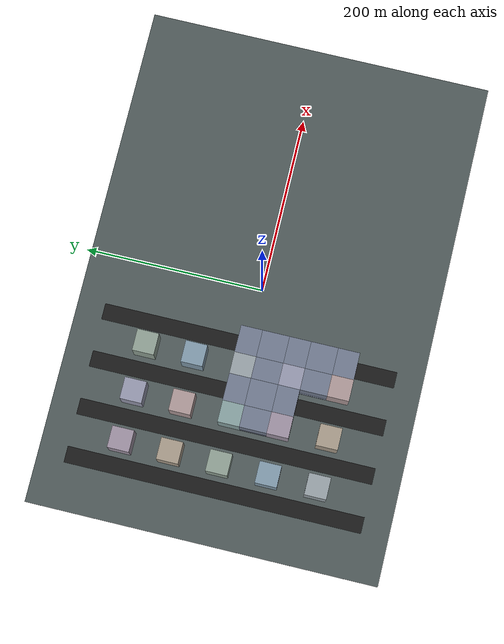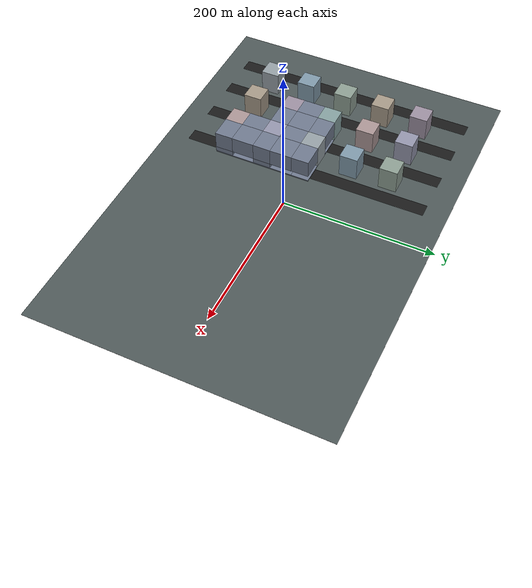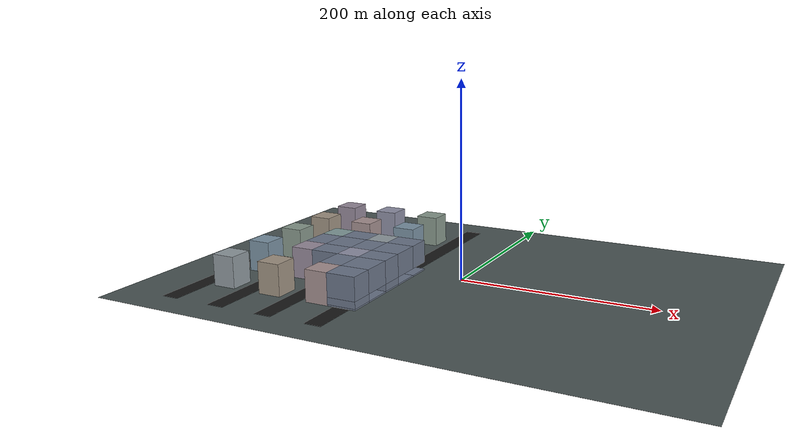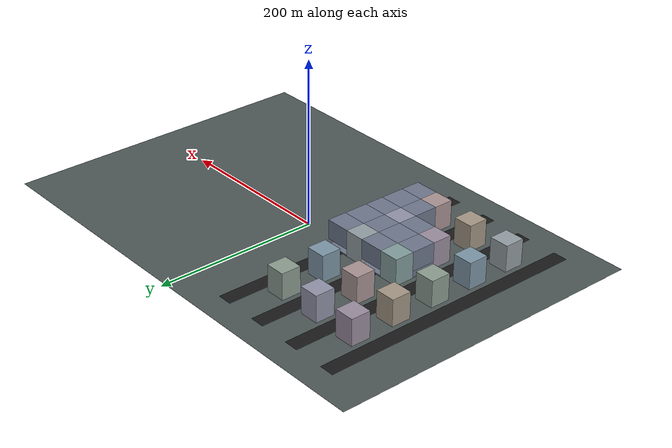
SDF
<sdf version="1.9">
 <world name="generated_city">
  <model name="ground">
   <static>true</static>
   <pose>0.000 0.000 -0.050 0 0 0</pose>
   <link name="link">
    <collision name="collision"><geometry><box><size>570.000 390.000 0.100</size></box></geometry></collision>
    <visual name="visual">
     <geometry><box><size>570.000 390.000 0.100</size></box></geometry>
     <material><diffuse>0.3 0.34 0.34 1.0</diffuse></material>
    </visual>
   </link>
  </model>
  <model name="avenue_01">
   <static>true</static>
   <pose>-225.000 0.000 0.050 0 0 0</pose>
   <link name="link">
    <visual name="visual">
     <geometry><box><size>18.000 330.000 0.040</size></box></geometry>
     <material><diffuse>0.1 0.1 0.1 1.0</diffuse></material>
    </visual>
   </link>
  </model>
  <model name="avenue_02">
   <static>true</static>
   <pose>-171.000 0.000 0.050 0 0 0</pose>
   <link name="link">
    <visual name="visual">
     <geometry><box><size>18.000 330.000 0.040</size></box></geometry>
     <material><diffuse>0.1 0.1 0.1 1.0</diffuse></material>
    </visual>
   </link>
  </model>
  <model name="avenue_03">
   <static>true</static>
   <pose>-117.000 0.000 0.050 0 0 0</pose>
   <link name="link">
    <visual name="visual">
     <geometry><box><size>18.000 330.000 0.040</size></box></geometry>
     <material><diffuse>0.1 0.1 0.1 1.0</diffuse></material>
    </visual>
   </link>
  </model>
  <model name="avenue_04">
   <static>true</static>
   <pose>-63.000 0.000 0.050 0 0 0</pose>
   <link name="link">
    <visual name="visual">
     <geometry><box><size>18.000 330.000 0.040</size></box></geometry>
     <material><diffuse>0.1 0.1 0.1 1.0</diffuse></material>
    </visual>
   </link>
  </model>
  <model name="building_001">
   <static>true</static>
   <pose>-198.000 -108.000 16.000 0 0 0</pose>
   <link name="link">
    <collision name="collision"><geometry><box><size>24.000 24.000 32.000</size></box></geometry></collision>
    <visual name="visual">
     <geometry><box><size>24.000 24.000 32.000</size></box></geometry>
     <material><diffuse>0.5803921568627451 0.6196078431372549 0.6431372549019608 1.0</diffuse></material>
    </visual>
   </link>
  </model>
  <model name="building_002">
   <static>true</static>
   <pose>-144.000 -108.000 16.000 0 0 0</pose>
   <link name="link">
    <collision name="collision"><geometry><box><size>24.000 24.000 32.000</size></box></geometry></collision>
    <visual name="visual">
     <geometry><box><size>24.000 24.000 32.000</size></box></geometry>
     <material><diffuse>0.6431372549019608 0.592156862745098 0.5254901960784314 1.0</diffuse></material>
    </visual>
   </link>
  </model>
  <model name="building_003">
   <static>true</static>
   <pose>-90.000 -108.000 16.000 0 0 0</pose>
   <link name="link">
    <collision name="collision"><geometry><box><size>24.000 24.000 32.000</size></box></geometry></collision>
    <visual name="visual">
     <geometry><box><size>24.000 24.000 32.000</size></box></geometry>
     <material><diffuse>0.6627450980392157 0.5803921568627451 0.5803921568627451 1.0</diffuse></material>
    </visual>
   </link>
  </model>
  <model name="building_009">
   <static>true</static>
   <pose>-198.000 -54.000 16.000 0 0 0</pose>
   <link name="link">
    <collision name="collision"><geometry><box><size>24.000 24.000 32.000</size></box></geometry></collision>
    <visual name="visual">
     <geometry><box><size>24.000 24.000 32.000</size></box></geometry>
     <material><diffuse>0.49411764705882355 0.592156862745098 0.6588235294117647 1.0</diffuse></material>
    </visual>
   </link>
  </model>
  <model name="building_010">
   <static>true</static>
   <pose>-144.000 -54.000 16.000 0 0 0</pose>
   <link name="link">
    <collision name="collision"><geometry><box><size>24.000 24.000 32.000</size></box></geometry></collision>
    <visual name="visual">
     <geometry><box><size>24.000 24.000 32.000</size></box></geometry>
     <material><diffuse>0.6039215686274509 0.5568627450980392 0.6235294117647059 1.0</diffuse></material>
    </visual>
   </link>
  </model>
  <model name="building_011">
   <static>true</static>
   <pose>-90.000 -54.000 16.000 0 0 0</pose>
   <link name="link">
    <collision name="collision"><geometry><box><size>24.000 24.000 32.000</size></box></geometry></collision>
    <visual name="visual">
     <geometry><box><size>24.000 24.000 32.000</size></box></geometry>
     <material><diffuse>0.5725490196078431 0.5803921568627451 0.6666666666666666 1.0</diffuse></material>
    </visual>
   </link>
  </model>
  <model name="building_017">
   <static>true</static>
   <pose>-198.000 0.000 16.000 0 0 0</pose>
   <link name="link">
    <collision name="collision"><geometry><box><size>24.000 24.000 32.000</size></box></geometry></collision>
    <visual name="visual">
     <geometry><box><size>24.000 24.000 32.000</size></box></geometry>
     <material><diffuse>0.5490196078431373 0.615686274509804 0.5686274509803921 1.0</diffuse></material>
    </visual>
   </link>
  </model>
  <model name="building_018">
   <static>true</static>
   <pose>-144.000 0.000 16.000 0 0 0</pose>
   <link name="link">
    <collision name="collision"><geometry><box><size>24.000 24.000 32.000</size></box></geometry></collision>
    <visual name="visual">
     <geometry><box><size>24.000 24.000 32.000</size></box></geometry>
     <material><diffuse>0.5176470588235295 0.6196078431372549 0.6196078431372549 1.0</diffuse></material>
    </visual>
   </link>
  </model>
  <model name="building_019">
   <static>true</static>
   <pose>-90.000 0.000 16.000 0 0 0</pose>
   <link name="link">
    <collision name="collision"><geometry><box><size>24.000 24.000 32.000</size></box></geometry></collision>
    <visual name="visual">
     <geometry><box><size>24.000 24.000 32.000</size></box></geometry>
     <material><diffuse>0.5803921568627451 0.6196078431372549 0.6431372549019608 1.0</diffuse></material>
    </visual>
   </link>
  </model>
  <model name="building_025">
   <static>true</static>
   <pose>-198.000 54.000 16.000 0 0 0</pose>
   <link name="link">
    <collision name="collision"><geometry><box><size>24.000 24.000 32.000</size></box></geometry></collision>
    <visual name="visual">
     <geometry><box><size>24.000 24.000 32.000</size></box></geometry>
     <material><diffuse>0.6431372549019608 0.592156862745098 0.5254901960784314 1.0</diffuse></material>
    </visual>
   </link>
  </model>
  <model name="building_026">
   <static>true</static>
   <pose>-144.000 54.000 16.000 0 0 0</pose>
   <link name="link">
    <collision name="collision"><geometry><box><size>24.000 24.000 32.000</size></box></geometry></collision>
    <visual name="visual">
     <geometry><box><size>24.000 24.000 32.000</size></box></geometry>
     <material><diffuse>0.6627450980392157 0.5803921568627451 0.5803921568627451 1.0</diffuse></material>
    </visual>
   </link>
  </model>
  <model name="building_027">
   <static>true</static>
   <pose>-90.000 54.000 16.000 0 0 0</pose>
   <link name="link">
    <collision name="collision"><geometry><box><size>24.000 24.000 32.000</size></box></geometry></collision>
    <visual name="visual">
     <geometry><box><size>24.000 24.000 32.000</size></box></geometry>
     <material><diffuse>0.49411764705882355 0.592156862745098 0.6588235294117647 1.0</diffuse></material>
    </visual>
   </link>
  </model>
  <model name="building_033">
   <static>true</static>
   <pose>-198.000 108.000 16.000 0 0 0</pose>
   <link name="link">
    <collision name="collision"><geometry><box><size>24.000 24.000 32.000</size></box></geometry></collision>
    <visual name="visual">
     <geometry><box><size>24.000 24.000 32.000</size></box></geometry>
     <material><diffuse>0.6039215686274509 0.5568627450980392 0.6235294117647059 1.0</diffuse></material>
    </visual>
   </link>
  </model>
  <model name="building_034">
   <static>true</static>
   <pose>-144.000 108.000 16.000 0 0 0</pose>
   <link name="link">
    <collision name="collision"><geometry><box><size>24.000 24.000 32.000</size></box></geometry></collision>
    <visual name="visual">
     <geometry><box><size>24.000 24.000 32.000</size></box></geometry>
     <material><diffuse>0.5725490196078431 0.5803921568627451 0.6666666666666666 1.0</diffuse></material>
    </visual>
   </link>
  </model>
  <model name="building_035">
   <static>true</static>
   <pose>-90.000 108.000 16.000 0 0 0</pose>
   <link name="link">
    <collision name="collision"><geometry><box><size>24.000 24.000 32.000</size></box></geometry></collision>
    <visual name="visual">
     <geometry><box><size>24.000 24.000 32.000</size></box></geometry>
     <material><diffuse>0.5490196078431373 0.615686274509804 0.5686274509803921 1.0</diffuse></material>
    </visual>
   </link>
  </model>
  <model name="passage_structure_11_19_l_intersection_lower">
   <static>true</static>
   <pose>-63.000 -27.000 0.750 0 0 0</pose>
   <link name="link">
    <collision name="collision"><geometry><box><size>30.000 30.000 1.500</size></box></geometry></collision>
    <visual name="visual">
     <visibility_flags>134217728</visibility_flags>
     <geometry><box><size>30.000 30.000 1.500</size></box></geometry>
     <material><diffuse>0.43 0.47 0.55 1.0</diffuse></material>
    </visual>
   </link>
  </model>
  <model name="passage_structure_11_19_l_intersection_upper">
   <static>true</static>
   <pose>-63.000 -27.000 20.250 0 0 0</pose>
   <link name="link">
    <collision name="collision"><geometry><box><size>30.000 30.000 23.500</size></box></geometry></collision>
    <visual name="visual">
     <visibility_flags>134217728</visibility_flags>
     <geometry><box><size>30.000 30.000 23.500</size></box></geometry>
     <material><diffuse>0.43 0.47 0.55 1.0</diffuse></material>
    </visual>
   </link>
  </model>
  <model name="passage_structure_11_19_l_west_lower">
   <static>true</static>
   <pose>-63.000 -54.000 0.750 0 0 0</pose>
   <link name="link">
    <collision name="collision"><geometry><box><size>30.000 24.000 1.500</size></box></geometry></collision>
    <visual name="visual">
     <visibility_flags>134217728</visibility_flags>
     <geometry><box><size>30.000 24.000 1.500</size></box></geometry>
     <material><diffuse>0.43 0.47 0.55 1.0</diffuse></material>
    </visual>
   </link>
  </model>
  <model name="passage_structure_11_19_l_west_upper">
   <static>true</static>
   <pose>-63.000 -54.000 20.250 0 0 0</pose>
   <link name="link">
    <collision name="collision"><geometry><box><size>30.000 24.000 23.500</size></box></geometry></collision>
    <visual name="visual">
     <visibility_flags>134217728</visibility_flags>
     <geometry><box><size>30.000 24.000 23.500</size></box></geometry>
     <material><diffuse>0.43 0.47 0.55 1.0</diffuse></material>
    </visual>
   </link>
  </model>
  <model name="passage_structure_11_19_l_west_middle">
   <static>true</static>
   <pose>-63.000 -54.000 5.000 0 0 0</pose>
   <link name="link">
    <collision name="collision"><geometry><box><size>30.000 24.000 7.000</size></box></geometry></collision>
    <visual name="visual">
     <visibility_flags>134217728</visibility_flags>
     <geometry><box><size>30.000 24.000 7.000</size></box></geometry>
     <material><diffuse>0.43 0.47 0.55 1.0</diffuse></material>
    </visual>
   </link>
  </model>
  <model name="passage_structure_11_19_l_east_lower">
   <static>true</static>
   <pose>-63.000 0.000 0.750 0 0 0</pose>
   <link name="link">
    <collision name="collision"><geometry><box><size>30.000 24.000 1.500</size></box></geometry></collision>
    <visual name="visual">
     <visibility_flags>134217728</visibility_flags>
     <geometry><box><size>30.000 24.000 1.500</size></box></geometry>
     <material><diffuse>0.43 0.47 0.55 1.0</diffuse></material>
    </visual>
   </link>
  </model>
  <model name="passage_structure_11_19_l_east_upper">
   <static>true</static>
   <pose>-63.000 0.000 20.250 0 0 0</pose>
   <link name="link">
    <collision name="collision"><geometry><box><size>30.000 24.000 23.500</size></box></geometry></collision>
    <visual name="visual">
     <visibility_flags>134217728</visibility_flags>
     <geometry><box><size>30.000 24.000 23.500</size></box></geometry>
     <material><diffuse>0.43 0.47 0.55 1.0</diffuse></material>
    </visual>
   </link>
  </model>
  <model name="passage_structure_11_19_l_south_lower">
   <static>true</static>
   <pose>-90.000 -27.000 0.750 0 0 0</pose>
   <link name="link">
    <collision name="collision"><geometry><box><size>24.000 30.000 1.500</size></box></geometry></collision>
    <visual name="visual">
     <visibility_flags>134217728</visibility_flags>
     <geometry><box><size>24.000 30.000 1.500</size></box></geometry>
     <material><diffuse>0.43 0.47 0.55 1.0</diffuse></material>
    </visual>
   </link>
  </model>
  <model name="passage_structure_11_19_l_south_upper">
   <static>true</static>
   <pose>-90.000 -27.000 20.250 0 0 0</pose>
   <link name="link">
    <collision name="collision"><geometry><box><size>24.000 30.000 23.500</size></box></geometry></collision>
    <visual name="visual">
     <visibility_flags>134217728</visibility_flags>
     <geometry><box><size>24.000 30.000 23.500</size></box></geometry>
     <material><diffuse>0.43 0.47 0.55 1.0</diffuse></material>
    </visual>
   </link>
  </model>
  <model name="passage_structure_54_162_straight_intersection_lower">
   <static>true</static>
   <pose>-63.000 -81.000 0.750 0 0 0</pose>
   <link name="link">
    <collision name="collision"><geometry><box><size>30.000 30.000 1.500</size></box></geometry></collision>
    <visual name="visual">
     <visibility_flags>134217728</visibility_flags>
     <geometry><box><size>30.000 30.000 1.500</size></box></geometry>
     <material><diffuse>0.43 0.47 0.55 1.0</diffuse></material>
    </visual>
   </link>
  </model>
  <model name="passage_structure_54_162_straight_intersection_upper">
   <static>true</static>
   <pose>-63.000 -81.000 20.250 0 0 0</pose>
   <link name="link">
    <collision name="collision"><geometry><box><size>30.000 30.000 23.500</size></box></geometry></collision>
    <visual name="visual">
     <visibility_flags>134217728</visibility_flags>
     <geometry><box><size>30.000 30.000 23.500</size></box></geometry>
     <material><diffuse>0.43 0.47 0.55 1.0</diffuse></material>
    </visual>
   </link>
  </model>
  <model name="passage_structure_54_162_straight_west_lower">
   <static>true</static>
   <pose>-63.000 -108.000 0.750 0 0 0</pose>
   <link name="link">
    <collision name="collision"><geometry><box><size>30.000 24.000 1.500</size></box></geometry></collision>
    <visual name="visual">
     <visibility_flags>134217728</visibility_flags>
     <geometry><box><size>30.000 24.000 1.500</size></box></geometry>
     <material><diffuse>0.43 0.47 0.55 1.0</diffuse></material>
    </visual>
   </link>
  </model>
  <model name="passage_structure_54_162_straight_west_upper">
   <static>true</static>
   <pose>-63.000 -108.000 20.250 0 0 0</pose>
   <link name="link">
    <collision name="collision"><geometry><box><size>30.000 24.000 23.500</size></box></geometry></collision>
    <visual name="visual">
     <visibility_flags>134217728</visibility_flags>
     <geometry><box><size>30.000 24.000 23.500</size></box></geometry>
     <material><diffuse>0.43 0.47 0.55 1.0</diffuse></material>
    </visual>
   </link>
  </model>
  <model name="passage_structure_54_162_straight_west_middle">
   <static>true</static>
   <pose>-63.000 -108.000 5.000 0 0 0</pose>
   <link name="link">
    <collision name="collision"><geometry><box><size>30.000 24.000 7.000</size></box></geometry></collision>
    <visual name="visual">
     <visibility_flags>134217728</visibility_flags>
     <geometry><box><size>30.000 24.000 7.000</size></box></geometry>
     <material><diffuse>0.43 0.47 0.55 1.0</diffuse></material>
    </visual>
   </link>
  </model>
  <model name="passage_structure_54_162_straight_south_lower">
   <static>true</static>
   <pose>-90.000 -81.000 0.750 0 0 0</pose>
   <link name="link">
    <collision name="collision"><geometry><box><size>24.000 30.000 1.500</size></box></geometry></collision>
    <visual name="visual">
     <visibility_flags>134217728</visibility_flags>
     <geometry><box><size>24.000 30.000 1.500</size></box></geometry>
     <material><diffuse>0.43 0.47 0.55 1.0</diffuse></material>
    </visual>
   </link>
  </model>
  <model name="passage_structure_54_162_straight_south_upper">
   <static>true</static>
   <pose>-90.000 -81.000 20.250 0 0 0</pose>
   <link name="link">
    <collision name="collision"><geometry><box><size>24.000 30.000 23.500</size></box></geometry></collision>
    <visual name="visual">
     <visibility_flags>134217728</visibility_flags>
     <geometry><box><size>24.000 30.000 23.500</size></box></geometry>
     <material><diffuse>0.43 0.47 0.55 1.0</diffuse></material>
    </visual>
   </link>
  </model>
  <model name="passage_structure_108_108_t_intersection_lower">
   <static>true</static>
   <pose>-117.000 -27.000 0.750 0 0 0</pose>
   <link name="link">
    <collision name="collision"><geometry><box><size>30.000 30.000 1.500</size></box></geometry></collision>
    <visual name="visual">
     <visibility_flags>134217728</visibility_flags>
     <geometry><box><size>30.000 30.000 1.500</size></box></geometry>
     <material><diffuse>0.43 0.47 0.55 1.0</diffuse></material>
    </visual>
   </link>
  </model>
  <model name="passage_structure_108_108_t_intersection_upper">
   <static>true</static>
   <pose>-117.000 -27.000 20.250 0 0 0</pose>
   <link name="link">
    <collision name="collision"><geometry><box><size>30.000 30.000 23.500</size></box></geometry></collision>
    <visual name="visual">
     <visibility_flags>134217728</visibility_flags>
     <geometry><box><size>30.000 30.000 23.500</size></box></geometry>
     <material><diffuse>0.43 0.47 0.55 1.0</diffuse></material>
    </visual>
   </link>
  </model>
  <model name="passage_structure_108_108_t_west_lower">
   <static>true</static>
   <pose>-117.000 -54.000 0.750 0 0 0</pose>
   <link name="link">
    <collision name="collision"><geometry><box><size>30.000 24.000 1.500</size></box></geometry></collision>
    <visual name="visual">
     <visibility_flags>134217728</visibility_flags>
     <geometry><box><size>30.000 24.000 1.500</size></box></geometry>
     <material><diffuse>0.43 0.47 0.55 1.0</diffuse></material>
    </visual>
   </link>
  </model>
  <model name="passage_structure_108_108_t_west_upper">
   <static>true</static>
   <pose>-117.000 -54.000 20.250 0 0 0</pose>
   <link name="link">
    <collision name="collision"><geometry><box><size>30.000 24.000 23.500</size></box></geometry></collision>
    <visual name="visual">
     <visibility_flags>134217728</visibility_flags>
     <geometry><box><size>30.000 24.000 23.500</size></box></geometry>
     <material><diffuse>0.43 0.47 0.55 1.0</diffuse></material>
    </visual>
   </link>
  </model>
  <model name="passage_structure_108_108_t_east_lower">
   <static>true</static>
   <pose>-117.000 0.000 0.750 0 0 0</pose>
   <link name="link">
    <collision name="collision"><geometry><box><size>30.000 24.000 1.500</size></box></geometry></collision>
    <visual name="visual">
     <visibility_flags>134217728</visibility_flags>
     <geometry><box><size>30.000 24.000 1.500</size></box></geometry>
     <material><diffuse>0.43 0.47 0.55 1.0</diffuse></material>
    </visual>
   </link>
  </model>
  <model name="passage_structure_108_108_t_east_upper">
   <static>true</static>
   <pose>-117.000 0.000 20.250 0 0 0</pose>
   <link name="link">
    <collision name="collision"><geometry><box><size>30.000 24.000 23.500</size></box></geometry></collision>
    <visual name="visual">
     <visibility_flags>134217728</visibility_flags>
     <geometry><box><size>30.000 24.000 23.500</size></box></geometry>
     <material><diffuse>0.43 0.47 0.55 1.0</diffuse></material>
    </visual>
   </link>
  </model>
  <model name="passage_structure_108_108_t_south_lower">
   <static>true</static>
   <pose>-144.000 -27.000 0.750 0 0 0</pose>
   <link name="link">
    <collision name="collision"><geometry><box><size>24.000 30.000 1.500</size></box></geometry></collision>
    <visual name="visual">
     <visibility_flags>134217728</visibility_flags>
     <geometry><box><size>24.000 30.000 1.500</size></box></geometry>
     <material><diffuse>0.43 0.47 0.55 1.0</diffuse></material>
    </visual>
   </link>
  </model>
  <model name="passage_structure_108_108_t_south_upper">
   <static>true</static>
   <pose>-144.000 -27.000 20.250 0 0 0</pose>
   <link name="link">
    <collision name="collision"><geometry><box><size>24.000 30.000 23.500</size></box></geometry></collision>
    <visual name="visual">
     <visibility_flags>134217728</visibility_flags>
     <geometry><box><size>24.000 30.000 23.500</size></box></geometry>
     <material><diffuse>0.43 0.47 0.55 1.0</diffuse></material>
    </visual>
   </link>
  </model>
  <model name="passage_structure_108_108_t_south_middle">
   <static>true</static>
   <pose>-144.000 -27.000 5.000 0 0 0</pose>
   <link name="link">
    <collision name="collision"><geometry><box><size>24.000 30.000 7.000</size></box></geometry></collision>
    <visual name="visual">
     <visibility_flags>134217728</visibility_flags>
     <geometry><box><size>24.000 30.000 7.000</size></box></geometry>
     <material><diffuse>0.43 0.47 0.55 1.0</diffuse></material>
    </visual>
   </link>
  </model>
  <model name="passage_structure_11_19_l_intersection_no_static_occluder">
   <static>true</static>
   <pose>-63.000 -27.000 5.000 0 0 0</pose>
   <link name="no_static_lidar_occluder">
    <visual name="visual">
     <cast_shadows>false</cast_shadows>
     <transparency>0.999</transparency>
     <visibility_flags>67108864</visibility_flags>
     <geometry><box><size>30.000 30.000 7.000</size></box></geometry>
    </visual>
   </link>
  </model>
  <model name="passage_structure_11_19_l_east_no_static_occluder">
   <static>true</static>
   <pose>-63.000 0.000 5.000 0 0 0</pose>
   <link name="no_static_lidar_occluder">
    <visual name="visual">
     <cast_shadows>false</cast_shadows>
     <transparency>0.999</transparency>
     <visibility_flags>67108864</visibility_flags>
     <geometry><box><size>30.000 24.000 7.000</size></box></geometry>
    </visual>
   </link>
  </model>
  <model name="passage_structure_11_19_l_south_no_static_occluder">
   <static>true</static>
   <pose>-90.000 -27.000 5.000 0 0 0</pose>
   <link name="no_static_lidar_occluder">
    <visual name="visual">
     <cast_shadows>false</cast_shadows>
     <transparency>0.999</transparency>
     <visibility_flags>67108864</visibility_flags>
     <geometry><box><size>24.000 30.000 7.000</size></box></geometry>
    </visual>
   </link>
  </model>
  <model name="passage_structure_54_162_straight_south_no_static_occluder">
   <static>true</static>
   <pose>-90.000 -81.000 5.000 0 0 0</pose>
   <link name="no_static_lidar_occluder">
    <visual name="visual">
     <cast_shadows>false</cast_shadows>
     <transparency>0.999</transparency>
     <visibility_flags>67108864</visibility_flags>
     <geometry><box><size>24.000 30.000 7.000</size></box></geometry>
    </visual>
   </link>
  </model>
  <model name="passage_structure_108_108_t_intersection_no_static_occluder">
   <static>true</static>
   <pose>-117.000 -27.000 5.000 0 0 0</pose>
   <link name="no_static_lidar_occluder">
    <visual name="visual">
     <cast_shadows>false</cast_shadows>
     <transparency>0.999</transparency>
     <visibility_flags>67108864</visibility_flags>
     <geometry><box><size>30.000 30.000 7.000</size></box></geometry>
    </visual>
   </link>
  </model>
  <model name="passage_structure_108_108_t_west_no_static_occluder">
   <static>true</static>
   <pose>-117.000 -54.000 5.000 0 0 0</pose>
   <link name="no_static_lidar_occluder">
    <visual name="visual">
     <cast_shadows>false</cast_shadows>
     <transparency>0.999</transparency>
     <visibility_flags>67108864</visibility_flags>
     <geometry><box><size>30.000 24.000 7.000</size></box></geometry>
    </visual>
   </link>
  </model>
  <model name="passage_structure_108_108_t_east_no_static_occluder">
   <static>true</static>
   <pose>-117.000 0.000 5.000 0 0 0</pose>
   <link name="no_static_lidar_occluder">
    <visual name="visual">
     <cast_shadows>false</cast_shadows>
     <transparency>0.999</transparency>
     <visibility_flags>67108864</visibility_flags>
     <geometry><box><size>30.000 24.000 7.000</size></box></geometry>
    </visual>
   </link>
  </model>
  <model name="passage_structure_108_108_t_north_no_static_occluder">
   <static>true</static>
   <pose>-90.000 -27.000 5.000 0 0 0</pose>
   <link name="no_static_lidar_occluder">
    <visual name="visual">
     <cast_shadows>false</cast_shadows>
     <transparency>0.999</transparency>
     <visibility_flags>67108864</visibility_flags>
     <geometry><box><size>24.000 30.000 7.000</size></box></geometry>
    </visual>
   </link>
  </model>
 </world>
</sdf>
